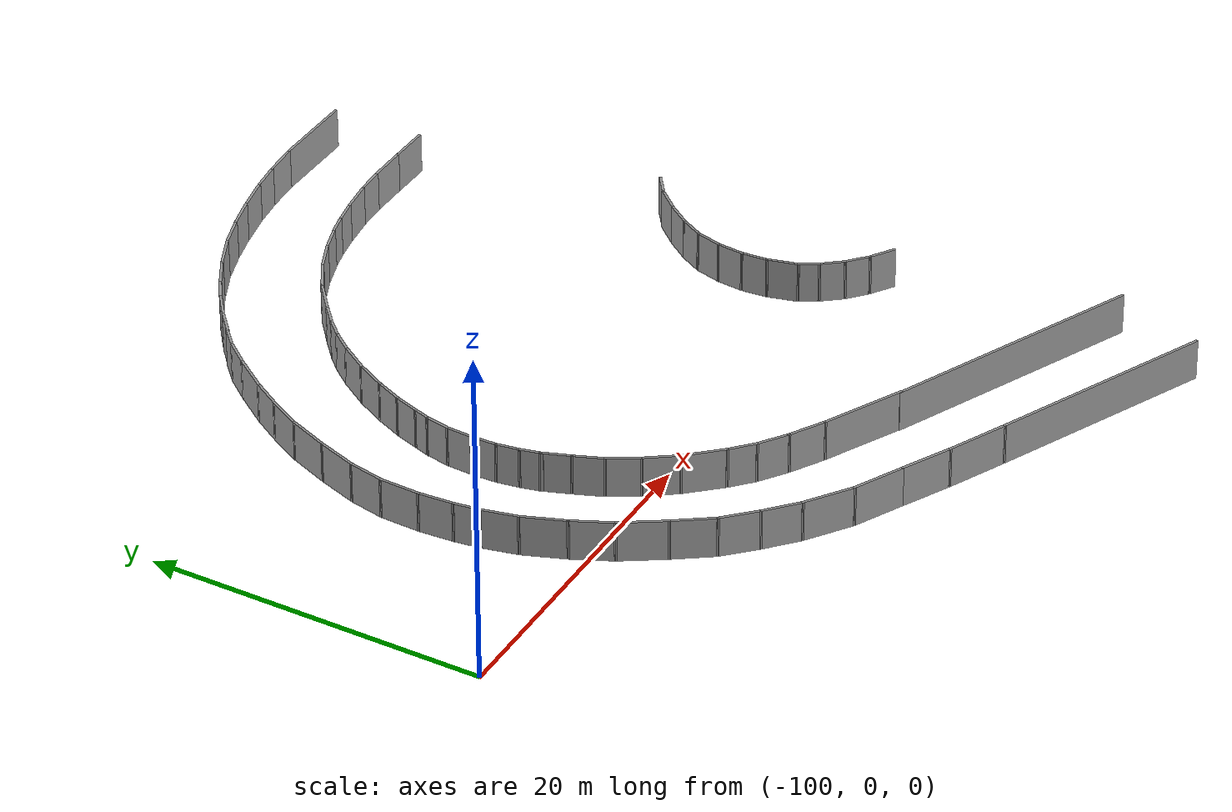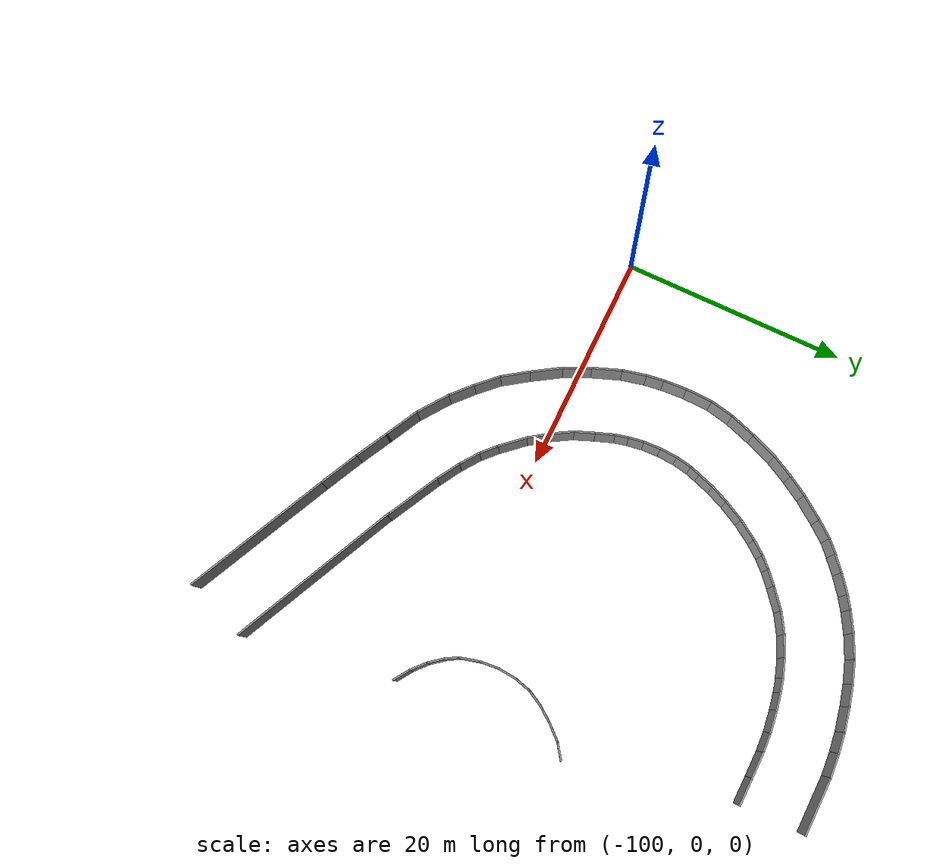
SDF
<sdf version="1.6">
 <model name="pista_l">
  <pose>-4.26084 -21.2973 0 0 -0 0</pose>
  <link name="Wall_280">
   <collision name="Wall_280_Collision">
    <geometry><box><size>1.56006 0.15 2.5</size></box></geometry>
    <pose>0 0 1.25 0 -0 0</pose>
   </collision>
   <visual name="Wall_280_Visual">
    <pose>0 0 1.25 0 -0 0</pose>
    <geometry><box><size>1.56006 0.15 2.5</size></box></geometry>
    <material>
     <script><uri>file://media/materials/scripts/gazebo.material</uri><name>Gazebo/Grey</name></script>
     <ambient>1 1 1 1</ambient>
    </material>
    <meta><layer>0</layer></meta>
   </visual>
   <pose>-54.7034 33.4497 0 0 0 -2.51696</pose>
  </link>
  <link name="Wall_281">
   <collision name="Wall_281_Collision">
    <geometry><box><size>1.82666 0.15 2.5</size></box></geometry>
    <pose>0 0 1.25 0 -0 0</pose>
   </collision>
   <visual name="Wall_281_Visual">
    <pose>0 0 1.25 0 -0 0</pose>
    <geometry><box><size>1.82666 0.15 2.5</size></box></geometry>
    <material>
     <script><uri>file://media/materials/scripts/gazebo.material</uri><name>Gazebo/Grey</name></script>
     <ambient>1 1 1 1</ambient>
    </material>
    <meta><layer>0</layer></meta>
   </visual>
   <pose>-55.8339 32.4122 0 0 0 -2.30007</pose>
  </link>
  <link name="Wall_282">
   <collision name="Wall_282_Collision">
    <geometry><box><size>1.69304 0.15 2.5</size></box></geometry>
    <pose>0 0 1.25 0 -0 0</pose>
   </collision>
   <visual name="Wall_282_Visual">
    <pose>0 0 1.25 0 -0 0</pose>
    <geometry><box><size>1.69304 0.15 2.5</size></box></geometry>
    <material>
     <script><uri>file://media/materials/scripts/gazebo.material</uri><name>Gazebo/Grey</name></script>
     <ambient>1 1 1 1</ambient>
    </material>
    <meta><layer>0</layer></meta>
   </visual>
   <pose>-56.8447 31.162 0 0 0 -2.19706</pose>
  </link>
  <link name="Wall_283">
   <collision name="Wall_283_Collision">
    <geometry><box><size>1.60209 0.15 2.5</size></box></geometry>
    <pose>0 0 1.25 0 -0 0</pose>
   </collision>
   <visual name="Wall_283_Visual">
    <pose>0 0 1.25 0 -0 0</pose>
    <geometry><box><size>1.60209 0.15 2.5</size></box></geometry>
    <material>
     <script><uri>file://media/materials/scripts/gazebo.material</uri><name>Gazebo/Grey</name></script>
     <ambient>1 1 1 1</ambient>
    </material>
    <meta><layer>0</layer></meta>
   </visual>
   <pose>-57.6427 29.8985 0 0 0 -2.06722</pose>
  </link>
  <link name="Wall_284">
   <collision name="Wall_284_Collision">
    <geometry><box><size>1.71783 0.15 2.5</size></box></geometry>
    <pose>0 0 1.25 0 -0 0</pose>
   </collision>
   <visual name="Wall_284_Visual">
    <pose>0 0 1.25 0 -0 0</pose>
    <geometry><box><size>1.71783 0.15 2.5</size></box></geometry>
    <material>
     <script><uri>file://media/materials/scripts/gazebo.material</uri><name>Gazebo/Grey</name></script>
     <ambient>1 1 1 1</ambient>
    </material>
    <meta><layer>0</layer></meta>
   </visual>
   <pose>-58.188 28.502 0 0 0 -1.82812</pose>
  </link>
  <link name="Wall_285">
   <collision name="Wall_285_Collision">
    <geometry><box><size>1.69853 0.15 2.5</size></box></geometry>
    <pose>0 0 1.25 0 -0 0</pose>
   </collision>
   <visual name="Wall_285_Visual">
    <pose>0 0 1.25 0 -0 0</pose>
    <geometry><box><size>1.69853 0.15 2.5</size></box></geometry>
    <material>
     <script><uri>file://media/materials/scripts/gazebo.material</uri><name>Gazebo/Grey</name></script>
     <ambient>1 1 1 1</ambient>
    </material>
    <meta><layer>0</layer></meta>
   </visual>
   <pose>-58.454 26.9725 0 0 0 -1.65679</pose>
  </link>
  <link name="Wall_286">
   <collision name="Wall_286_Collision">
    <geometry><box><size>1.67203 0.15 2.5</size></box></geometry>
    <pose>0 0 1.25 0 -0 0</pose>
   </collision>
   <visual name="Wall_286_Visual">
    <pose>0 0 1.25 0 -0 0</pose>
    <geometry><box><size>1.67203 0.15 2.5</size></box></geometry>
    <material>
     <script><uri>file://media/materials/scripts/gazebo.material</uri><name>Gazebo/Grey</name></script>
     <ambient>1 1 1 1</ambient>
    </material>
    <meta><layer>0</layer></meta>
   </visual>
   <pose>-58.454 25.443 0 0 0 -1.4833</pose>
  </link>
  <link name="Wall_287">
   <collision name="Wall_287_Collision">
    <geometry><box><size>1.93717 0.15 2.5</size></box></geometry>
    <pose>0 0 1.25 0 -0 0</pose>
   </collision>
   <visual name="Wall_287_Visual">
    <pose>0 0 1.25 0 -0 0</pose>
    <geometry><box><size>1.93717 0.15 2.5</size></box></geometry>
    <material>
     <script><uri>file://media/materials/scripts/gazebo.material</uri><name>Gazebo/Grey</name></script>
     <ambient>1 1 1 1</ambient>
    </material>
    <meta><layer>0</layer></meta>
   </visual>
   <pose>-58.1614 23.8204 0 0 0 -1.31499</pose>
  </link>
  <link name="Wall_288">
   <collision name="Wall_288_Collision">
    <geometry><box><size>1.31799 0.15 2.5</size></box></geometry>
    <pose>0 0 1.25 0 -0 0</pose>
   </collision>
   <visual name="Wall_288_Visual">
    <pose>0 0 1.25 0 -0 0</pose>
    <geometry><box><size>1.31799 0.15 2.5</size></box></geometry>
    <material>
     <script><uri>file://media/materials/scripts/gazebo.material</uri><name>Gazebo/Grey</name></script>
     <ambient>1 1 1 1</ambient>
    </material>
    <meta><layer>0</layer></meta>
   </visual>
   <pose>-57.6427 22.4505 0 0 0 -1.046</pose>
  </link>
  <link name="Wall_289">
   <collision name="Wall_289_Collision">
    <geometry><box><size>1.60817 0.15 2.5</size></box></geometry>
    <pose>0 0 1.25 0 -0 0</pose>
   </collision>
   <visual name="Wall_289_Visual">
    <pose>0 0 1.25 0 -0 0</pose>
    <geometry><box><size>1.60817 0.15 2.5</size></box></geometry>
    <material>
     <script><uri>file://media/materials/scripts/gazebo.material</uri><name>Gazebo/Grey</name></script>
     <ambient>1 1 1 1</ambient>
    </material>
    <meta><layer>0</layer></meta>
   </visual>
   <pose>-56.8979 21.3732 0 0 0 -0.901753</pose>
  </link>
  <link name="Wall_290">
   <collision name="Wall_290_Collision">
    <geometry><box><size>1.61904 0.15 2.5</size></box></geometry>
    <pose>0 0 1.25 0 -0 0</pose>
   </collision>
   <visual name="Wall_290_Visual">
    <pose>0 0 1.25 0 -0 0</pose>
    <geometry><box><size>1.61904 0.15 2.5</size></box></geometry>
    <material>
     <script><uri>file://media/materials/scripts/gazebo.material</uri><name>Gazebo/Grey</name></script>
     <ambient>1 1 1 1</ambient>
    </material>
    <meta><layer>0</layer></meta>
   </visual>
   <pose>-55.9004 20.3092 0 0 0 -0.734161</pose>
  </link>
  <link name="Wall_291">
   <collision name="Wall_291_Collision">
    <geometry><box><size>1.68453 0.15 2.5</size></box></geometry>
    <pose>0 0 1.25 0 -0 0</pose>
   </collision>
   <visual name="Wall_291_Visual">
    <pose>0 0 1.25 0 -0 0</pose>
    <geometry><box><size>1.68453 0.15 2.5</size></box></geometry>
    <material>
     <script><uri>file://media/materials/scripts/gazebo.material</uri><name>Gazebo/Grey</name></script>
     <ambient>1 1 1 1</ambient>
    </material>
    <meta><layer>0</layer></meta>
   </visual>
   <pose>-54.7167 19.3914 0 0 0 -0.588003</pose>
  </link>
  <link name="Wall_333">
   <collision name="Wall_333_Collision">
    <geometry><box><size>15.6946 0.15 2.5</size></box></geometry>
    <pose>0 0 1.25 0 -0 0</pose>
   </collision>
   <visual name="Wall_333_Visual">
    <pose>0 0 1.25 0 -0 0</pose>
    <geometry><box><size>15.6946 0.15 2.5</size></box></geometry>
    <material>
     <script><uri>file://media/materials/scripts/gazebo.material</uri><name>Gazebo/Grey</name></script>
     <ambient>1 1 1 1</ambient>
    </material>
    <meta><layer>0</layer></meta>
   </visual>
   <pose>-58.9594 9.15037 0 0 -0 2.71086</pose>
  </link>
  <link name="Wall_351">
   <collision name="Wall_351_Collision">
    <geometry><box><size>13.5265 0.15 2.5</size></box></geometry>
    <pose>0 0 1.25 0 -0 0</pose>
   </collision>
   <visual name="Wall_351_Visual">
    <pose>0 0 1.25 0 -0 0</pose>
    <geometry><box><size>13.5265 0.15 2.5</size></box></geometry>
    <material>
     <script><uri>file://media/materials/scripts/gazebo.material</uri><name>Gazebo/Grey</name></script>
     <ambient>1 1 1 1</ambient>
    </material>
    <meta><layer>0</layer></meta>
   </visual>
   <pose>-59.9303 3.29833 0 0 -0 2.70641</pose>
  </link>
  <link name="Wall_363">
   <collision name="Wall_363_Collision">
    <geometry><box><size>3.83823 0.15 2.5</size></box></geometry>
    <pose>0 0 1.25 0 -0 0</pose>
   </collision>
   <visual name="Wall_363_Visual">
    <pose>0 0 1.25 0 -0 0</pose>
    <geometry><box><size>3.83823 0.15 2.5</size></box></geometry>
    <material>
     <script><uri>file://media/materials/scripts/gazebo.material</uri><name>Gazebo/Grey</name></script>
     <ambient>1 1 1 1</ambient>
    </material>
    <meta><layer>0</layer></meta>
   </visual>
   <pose>-67.6577 6.91595 0 0 -0 2.69407</pose>
  </link>
  <link name="Wall_364">
   <collision name="Wall_364_Collision">
    <geometry><box><size>3.20763 0.15 2.5</size></box></geometry>
    <pose>0 0 1.25 0 -0 0</pose>
   </collision>
   <visual name="Wall_364_Visual">
    <pose>0 0 1.25 0 -0 0</pose>
    <geometry><box><size>3.20763 0.15 2.5</size></box></geometry>
    <material>
     <script><uri>file://media/materials/scripts/gazebo.material</uri><name>Gazebo/Grey</name></script>
     <ambient>1 1 1 1</ambient>
    </material>
    <meta><layer>0</layer></meta>
   </visual>
   <pose>-70.6768 8.41886 0 0 -0 2.66238</pose>
  </link>
  <link name="Wall_365">
   <collision name="Wall_365_Collision">
    <geometry><box><size>3.31442 0.15 2.5</size></box></geometry>
    <pose>0 0 1.25 0 -0 0</pose>
   </collision>
   <visual name="Wall_365_Visual">
    <pose>0 0 1.25 0 -0 0</pose>
    <geometry><box><size>3.31442 0.15 2.5</size></box></geometry>
    <material>
     <script><uri>file://media/materials/scripts/gazebo.material</uri><name>Gazebo/Grey</name></script>
     <ambient>1 1 1 1</ambient>
    </material>
    <meta><layer>0</layer></meta>
   </visual>
   <pose>-73.4432 9.84197 0 0 -0 2.67043</pose>
  </link>
  <link name="Wall_366">
   <collision name="Wall_366_Collision">
    <geometry><box><size>3.22057 0.15 2.5</size></box></geometry>
    <pose>0 0 1.25 0 -0 0</pose>
   </collision>
   <visual name="Wall_366_Visual">
    <pose>0 0 1.25 0 -0 0</pose>
    <geometry><box><size>3.22057 0.15 2.5</size></box></geometry>
    <material>
     <script><uri>file://media/materials/scripts/gazebo.material</uri><name>Gazebo/Grey</name></script>
     <ambient>1 1 1 1</ambient>
    </material>
    <meta><layer>0</layer></meta>
   </visual>
   <pose>-76.1033 11.4513 0 0 -0 2.52235</pose>
  </link>
  <link name="Wall_367">
   <collision name="Wall_367_Collision">
    <geometry><box><size>2.48507 0.15 2.5</size></box></geometry>
    <pose>0 0 1.25 0 -0 0</pose>
   </collision>
   <visual name="Wall_367_Visual">
    <pose>0 0 1.25 0 -0 0</pose>
    <geometry><box><size>2.48507 0.15 2.5</size></box></geometry>
    <material>
     <script><uri>file://media/materials/scripts/gazebo.material</uri><name>Gazebo/Grey</name></script>
     <ambient>1 1 1 1</ambient>
    </material>
    <meta><layer>0</layer></meta>
   </visual>
   <pose>-78.218 13.1271 0 0 -0 2.40454</pose>
  </link>
  <link name="Wall_368">
   <collision name="Wall_368_Collision">
    <geometry><box><size>2.50122 0.15 2.5</size></box></geometry>
    <pose>0 0 1.25 0 -0 0</pose>
   </collision>
   <visual name="Wall_368_Visual">
    <pose>0 0 1.25 0 -0 0</pose>
    <geometry><box><size>2.50122 0.15 2.5</size></box></geometry>
    <material>
     <script><uri>file://media/materials/scripts/gazebo.material</uri><name>Gazebo/Grey</name></script>
     <ambient>1 1 1 1</ambient>
    </material>
    <meta><layer>0</layer></meta>
   </visual>
   <pose>-79.9071 14.7497 0 0 -0 2.3482</pose>
  </link>
  <link name="Wall_369">
   <collision name="Wall_369_Collision">
    <geometry><box><size>2.71054 0.15 2.5</size></box></geometry>
    <pose>0 0 1.25 0 -0 0</pose>
   </collision>
   <visual name="Wall_369_Visual">
    <pose>0 0 1.25 0 -0 0</pose>
    <geometry><box><size>2.71054 0.15 2.5</size></box></geometry>
    <material>
     <script><uri>file://media/materials/scripts/gazebo.material</uri><name>Gazebo/Grey</name></script>
     <ambient>1 1 1 1</ambient>
    </material>
    <meta><layer>0</layer></meta>
   </visual>
   <pose>-81.4632 16.6383 0 0 -0 2.17897</pose>
  </link>
  <link name="Wall_370">
   <collision name="Wall_370_Collision">
    <geometry><box><size>2.98376 0.15 2.5</size></box></geometry>
    <pose>0 0 1.25 0 -0 0</pose>
   </collision>
   <visual name="Wall_370_Visual">
    <pose>0 0 1.25 0 -0 0</pose>
    <geometry><box><size>2.98376 0.15 2.5</size></box></geometry>
    <material>
     <script><uri>file://media/materials/scripts/gazebo.material</uri><name>Gazebo/Grey</name></script>
     <ambient>1 1 1 1</ambient>
    </material>
    <meta><layer>0</layer></meta>
   </visual>
   <pose>-82.9528 18.886 0 0 -0 2.13537</pose>
  </link>
  <link name="Wall_371">
   <collision name="Wall_371_Collision">
    <geometry><box><size>2.64886 0.15 2.5</size></box></geometry>
    <pose>0 0 1.25 0 -0 0</pose>
   </collision>
   <visual name="Wall_371_Visual">
    <pose>0 0 1.25 0 -0 0</pose>
    <geometry><box><size>2.64886 0.15 2.5</size></box></geometry>
    <material>
     <script><uri>file://media/materials/scripts/gazebo.material</uri><name>Gazebo/Grey</name></script>
     <ambient>1 1 1 1</ambient>
    </material>
    <meta><layer>0</layer></meta>
   </visual>
   <pose>-84.2429 21.2136 0 0 -0 2.01064</pose>
  </link>
  <link name="Wall_372">
   <collision name="Wall_372_Collision">
    <geometry><box><size>2.76833 0.15 2.5</size></box></geometry>
    <pose>0 0 1.25 0 -0 0</pose>
   </collision>
   <visual name="Wall_372_Visual">
    <pose>0 0 1.25 0 -0 0</pose>
    <geometry><box><size>2.76833 0.15 2.5</size></box></geometry>
    <material>
     <script><uri>file://media/materials/scripts/gazebo.material</uri><name>Gazebo/Grey</name></script>
     <ambient>1 1 1 1</ambient>
    </material>
    <meta><layer>0</layer></meta>
   </visual>
   <pose>-85.2404 23.5677 0 0 -0 1.93432</pose>
  </link>
  <link name="Wall_373">
   <collision name="Wall_373_Collision">
    <geometry><box><size>2.27935 0.15 2.5</size></box></geometry>
    <pose>0 0 1.25 0 -0 0</pose>
   </collision>
   <visual name="Wall_373_Visual">
    <pose>0 0 1.25 0 -0 0</pose>
    <geometry><box><size>2.27935 0.15 2.5</size></box></geometry>
    <material>
     <script><uri>file://media/materials/scripts/gazebo.material</uri><name>Gazebo/Grey</name></script>
     <ambient>1 1 1 1</ambient>
    </material>
    <meta><layer>0</layer></meta>
   </visual>
   <pose>-85.9453 25.8287 0 0 -0 1.7976</pose>
  </link>
  <link name="Wall_375">
   <collision name="Wall_375_Collision">
    <geometry><box><size>5.17033 0.15 2.5</size></box></geometry>
    <pose>0 0 1.25 0 -0 0</pose>
   </collision>
   <visual name="Wall_375_Visual">
    <pose>0 0 1.25 0 -0 0</pose>
    <geometry><box><size>5.17033 0.15 2.5</size></box></geometry>
    <material>
     <script><uri>file://media/materials/scripts/gazebo.material</uri><name>Gazebo/Grey</name></script>
     <ambient>1 1 1 1</ambient>
    </material>
    <meta><layer>0</layer></meta>
   </visual>
   <pose>-68.1764 13.5394 0 0 -0 2.66847</pose>
  </link>
  <link name="Wall_376">
   <collision name="Wall_376_Collision">
    <geometry><box><size>2.40365 0.15 2.5</size></box></geometry>
    <pose>0 0 1.25 0 -0 0</pose>
   </collision>
   <visual name="Wall_376_Visual">
    <pose>0 0 1.25 0 -0 0</pose>
    <geometry><box><size>2.40365 0.15 2.5</size></box></geometry>
    <material>
     <script><uri>file://media/materials/scripts/gazebo.material</uri><name>Gazebo/Grey</name></script>
     <ambient>1 1 1 1</ambient>
    </material>
    <meta><layer>0</layer></meta>
   </visual>
   <pose>-71.3817 15.2551 0 0 -0 2.60927</pose>
  </link>
  <link name="Wall_377">
   <collision name="Wall_377_Collision">
    <geometry><box><size>2.07645 0.15 2.5</size></box></geometry>
    <pose>0 0 1.25 0 -0 0</pose>
   </collision>
   <visual name="Wall_377_Visual">
    <pose>0 0 1.25 0 -0 0</pose>
    <geometry><box><size>2.07645 0.15 2.5</size></box></geometry>
    <material>
     <script><uri>file://media/materials/scripts/gazebo.material</uri><name>Gazebo/Grey</name></script>
     <ambient>1 1 1 1</ambient>
    </material>
    <meta><layer>0</layer></meta>
   </visual>
   <pose>-73.1373 16.3856 0 0 -0 2.52295</pose>
  </link>
  <link name="Wall_378">
   <collision name="Wall_378_Collision">
    <geometry><box><size>1.82497 0.15 2.5</size></box></geometry>
    <pose>0 0 1.25 0 -0 0</pose>
   </collision>
   <visual name="Wall_378_Visual">
    <pose>0 0 1.25 0 -0 0</pose>
    <geometry><box><size>1.82497 0.15 2.5</size></box></geometry>
    <material>
     <script><uri>file://media/materials/scripts/gazebo.material</uri><name>Gazebo/Grey</name></script>
     <ambient>1 1 1 1</ambient>
    </material>
    <meta><layer>0</layer></meta>
   </visual>
   <pose>-74.5338 17.5161 0 0 -0 2.38989</pose>
  </link>
  <link name="Wall_379">
   <collision name="Wall_379_Collision">
    <geometry><box><size>2.69265 0.15 2.5</size></box></geometry>
    <pose>0 0 1.25 0 -0 0</pose>
   </collision>
   <visual name="Wall_379_Visual">
    <pose>0 0 1.25 0 -0 0</pose>
    <geometry><box><size>2.69265 0.15 2.5</size></box></geometry>
    <material>
     <script><uri>file://media/materials/scripts/gazebo.material</uri><name>Gazebo/Grey</name></script>
     <ambient>1 1 1 1</ambient>
    </material>
    <meta><layer>0</layer></meta>
   </visual>
   <pose>-75.9969 19.0323 0 0 -0 2.30439</pose>
  </link>
  <link name="Wall_380">
   <collision name="Wall_380_Collision">
    <geometry><box><size>2.23111 0.15 2.5</size></box></geometry>
    <pose>0 0 1.25 0 -0 0</pose>
   </collision>
   <visual name="Wall_380_Visual">
    <pose>0 0 1.25 0 -0 0</pose>
    <geometry><box><size>2.23111 0.15 2.5</size></box></geometry>
    <material>
     <script><uri>file://media/materials/scripts/gazebo.material</uri><name>Gazebo/Grey</name></script>
     <ambient>1 1 1 1</ambient>
    </material>
    <meta><layer>0</layer></meta>
   </visual>
   <pose>-77.4466 20.8279 0 0 -0 2.18362</pose>
  </link>
  <link name="Wall_381">
   <collision name="Wall_381_Collision">
    <geometry><box><size>2.09345 0.15 2.5</size></box></geometry>
    <pose>0 0 1.25 0 -0 0</pose>
   </collision>
   <visual name="Wall_381_Visual">
    <pose>0 0 1.25 0 -0 0</pose>
    <geometry><box><size>2.09345 0.15 2.5</size></box></geometry>
    <material>
     <script><uri>file://media/materials/scripts/gazebo.material</uri><name>Gazebo/Grey</name></script>
     <ambient>1 1 1 1</ambient>
    </material>
    <meta><layer>0</layer></meta>
   </visual>
   <pose>-78.5372 22.517 0 0 -0 2.10183</pose>
  </link>
  <link name="Wall_382">
   <collision name="Wall_382_Collision">
    <geometry><box><size>1.95294 0.15 2.5</size></box></geometry>
    <pose>0 0 1.25 0 -0 0</pose>
   </collision>
   <visual name="Wall_382_Visual">
    <pose>0 0 1.25 0 -0 0</pose>
    <geometry><box><size>1.95294 0.15 2.5</size></box></geometry>
    <material>
     <script><uri>file://media/materials/scripts/gazebo.material</uri><name>Gazebo/Grey</name></script>
     <ambient>1 1 1 1</ambient>
    </material>
    <meta><layer>0</layer></meta>
   </visual>
   <pose>-79.3618 24.1928 0 0 -0 1.94856</pose>
  </link>
  <link name="Wall_383">
   <collision name="Wall_383_Collision">
    <geometry><box><size>1.84992 0.15 2.5</size></box></geometry>
    <pose>0 0 1.25 0 -0 0</pose>
   </collision>
   <visual name="Wall_383_Visual">
    <pose>0 0 1.25 0 -0 0</pose>
    <geometry><box><size>1.84992 0.15 2.5</size></box></geometry>
    <material>
     <script><uri>file://media/materials/scripts/gazebo.material</uri><name>Gazebo/Grey</name></script>
     <ambient>1 1 1 1</ambient>
    </material>
    <meta><layer>0</layer></meta>
   </visual>
   <pose>-79.9869 25.8287 0 0 -0 1.92224</pose>
  </link>
  <link name="Wall_385">
   <collision name="Wall_385_Collision">
    <geometry><box><size>1.68107 0.15 2.5</size></box></geometry>
    <pose>0 0 1.25 0 -0 0</pose>
   </collision>
   <visual name="Wall_385_Visual">
    <pose>0 0 1.25 0 -0 0</pose>
    <geometry><box><size>1.68107 0.15 2.5</size></box></geometry>
    <material>
     <script><uri>file://media/materials/scripts/gazebo.material</uri><name>Gazebo/Grey</name></script>
     <ambient>1 1 1 1</ambient>
    </material>
    <meta><layer>0</layer></meta>
   </visual>
   <pose>-86.2911 27.6242 0 0 -0 1.71024</pose>
  </link>
  <link name="Wall_386">
   <collision name="Wall_386_Collision">
    <geometry><box><size>2.22907 0.15 2.5</size></box></geometry>
    <pose>0 0 1.25 0 -0 0</pose>
   </collision>
   <visual name="Wall_386_Visual">
    <pose>0 0 1.25 0 -0 0</pose>
    <geometry><box><size>2.22907 0.15 2.5</size></box></geometry>
    <material>
     <script><uri>file://media/materials/scripts/gazebo.material</uri><name>Gazebo/Grey</name></script>
     <ambient>1 1 1 1</ambient>
    </material>
    <meta><layer>0</layer></meta>
   </visual>
   <pose>-86.464 29.4197 0 0 -0 1.63481</pose>
  </link>
  <link name="Wall_387">
   <collision name="Wall_387_Collision">
    <geometry><box><size>2.51876 0.15 2.5</size></box></geometry>
    <pose>0 0 1.25 0 -0 0</pose>
   </collision>
   <visual name="Wall_387_Visual">
    <pose>0 0 1.25 0 -0 0</pose>
    <geometry><box><size>2.51876 0.15 2.5</size></box></geometry>
    <material>
     <script><uri>file://media/materials/scripts/gazebo.material</uri><name>Gazebo/Grey</name></script>
     <ambient>1 1 1 1</ambient>
    </material>
    <meta><layer>0</layer></meta>
   </visual>
   <pose>-86.4906 31.6408 0 0 -0 1.5371</pose>
  </link>
  <link name="Wall_388">
   <collision name="Wall_388_Collision">
    <geometry><box><size>2.26802 0.15 2.5</size></box></geometry>
    <pose>0 0 1.25 0 -0 0</pose>
   </collision>
   <visual name="Wall_388_Visual">
    <pose>0 0 1.25 0 -0 0</pose>
    <geometry><box><size>2.26802 0.15 2.5</size></box></geometry>
    <material>
     <script><uri>file://media/materials/scripts/gazebo.material</uri><name>Gazebo/Grey</name></script>
     <ambient>1 1 1 1</ambient>
    </material>
    <meta><layer>0</layer></meta>
   </visual>
   <pose>-86.2379 33.862 0 0 -0 1.36848</pose>
  </link>
  <link name="Wall_389">
   <collision name="Wall_389_Collision">
    <geometry><box><size>2.56418 0.15 2.5</size></box></geometry>
    <pose>0 0 1.25 0 -0 0</pose>
   </collision>
   <visual name="Wall_389_Visual">
    <pose>0 0 1.25 0 -0 0</pose>
    <geometry><box><size>2.56418 0.15 2.5</size></box></geometry>
    <material>
     <script><uri>file://media/materials/scripts/gazebo.material</uri><name>Gazebo/Grey</name></script>
     <ambient>1 1 1 1</ambient>
    </material>
    <meta><layer>0</layer></meta>
   </visual>
   <pose>-85.6394 36.0432 0 0 -0 1.24556</pose>
  </link>
  <link name="Wall_390">
   <collision name="Wall_390_Collision">
    <geometry><box><size>2.66917 0.15 2.5</size></box></geometry>
    <pose>0 0 1.25 0 -0 0</pose>
   </collision>
   <visual name="Wall_390_Visual">
    <pose>0 0 1.25 0 -0 0</pose>
    <geometry><box><size>2.66917 0.15 2.5</size></box></geometry>
    <material>
     <script><uri>file://media/materials/scripts/gazebo.material</uri><name>Gazebo/Grey</name></script>
     <ambient>1 1 1 1</ambient>
    </material>
    <meta><layer>0</layer></meta>
   </visual>
   <pose>-84.7882 38.3574 0 0 -0 1.19225</pose>
  </link>
  <link name="Wall_391">
   <collision name="Wall_391_Collision">
    <geometry><box><size>2.2921 0.15 2.5</size></box></geometry>
    <pose>0 0 1.25 0 -0 0</pose>
   </collision>
   <visual name="Wall_391_Visual">
    <pose>0 0 1.25 0 -0 0</pose>
    <geometry><box><size>2.2921 0.15 2.5</size></box></geometry>
    <material>
     <script><uri>file://media/materials/scripts/gazebo.material</uri><name>Gazebo/Grey</name></script>
     <ambient>1 1 1 1</ambient>
    </material>
    <meta><layer>0</layer></meta>
   </visual>
   <pose>-83.8173 40.4721 0 0 -0 1.07938</pose>
  </link>
  <link name="Wall_392">
   <collision name="Wall_392_Collision">
    <geometry><box><size>2.08433 0.15 2.5</size></box></geometry>
    <pose>0 0 1.25 0 -0 0</pose>
   </collision>
   <visual name="Wall_392_Visual">
    <pose>0 0 1.25 0 -0 0</pose>
    <geometry><box><size>2.08433 0.15 2.5</size></box></geometry>
    <material>
     <script><uri>file://media/materials/scripts/gazebo.material</uri><name>Gazebo/Grey</name></script>
     <ambient>1 1 1 1</ambient>
    </material>
    <meta><layer>0</layer></meta>
   </visual>
   <pose>-82.8065 42.241 0 0 -0 1.02094</pose>
  </link>
  <link name="Wall_393">
   <collision name="Wall_393_Collision">
    <geometry><box><size>2.51248 0.15 2.5</size></box></geometry>
    <pose>0 0 1.25 0 -0 0</pose>
   </collision>
   <visual name="Wall_393_Visual">
    <pose>0 0 1.25 0 -0 0</pose>
    <geometry><box><size>2.51248 0.15 2.5</size></box></geometry>
    <material>
     <script><uri>file://media/materials/scripts/gazebo.material</uri><name>Gazebo/Grey</name></script>
     <ambient>1 1 1 1</ambient>
    </material>
    <meta><layer>0</layer></meta>
   </visual>
   <pose>-81.6095 44.0232 0 0 -0 0.945311</pose>
  </link>
  <link name="Wall_394">
   <collision name="Wall_394_Collision">
    <geometry><box><size>1.89064 0.15 2.5</size></box></geometry>
    <pose>0 0 1.25 0 -0 0</pose>
   </collision>
   <visual name="Wall_394_Visual">
    <pose>0 0 1.25 0 -0 0</pose>
    <geometry><box><size>1.89064 0.15 2.5</size></box></geometry>
    <material>
     <script><uri>file://media/materials/scripts/gazebo.material</uri><name>Gazebo/Grey</name></script>
     <ambient>1 1 1 1</ambient>
    </material>
    <meta><layer>0</layer></meta>
   </visual>
   <pose>-80.3726 45.6591 0 0 -0 0.893669</pose>
  </link>
  <link name="Wall_395">
   <collision name="Wall_395_Collision">
    <geometry><box><size>1.54239 0.15 2.5</size></box></geometry>
    <pose>0 0 1.25 0 -0 0</pose>
   </collision>
   <visual name="Wall_395_Visual">
    <pose>0 0 1.25 0 -0 0</pose>
    <geometry><box><size>1.54239 0.15 2.5</size></box></geometry>
    <material>
     <script><uri>file://media/materials/scripts/gazebo.material</uri><name>Gazebo/Grey</name></script>
     <ambient>1 1 1 1</ambient>
    </material>
    <meta><layer>0</layer></meta>
   </visual>
   <pose>-79.3219 46.8163 0 0 -0 0.758378</pose>
  </link>
  <link name="Wall_397">
   <collision name="Wall_397_Collision">
    <geometry><box><size>1.40811 0.15 2.5</size></box></geometry>
    <pose>0 0 1.25 0 -0 0</pose>
   </collision>
   <visual name="Wall_397_Visual">
    <pose>0 0 1.25 0 -0 0</pose>
    <geometry><box><size>1.40811 0.15 2.5</size></box></geometry>
    <material>
     <script><uri>file://media/materials/scripts/gazebo.material</uri><name>Gazebo/Grey</name></script>
     <ambient>1 1 1 1</ambient>
    </material>
    <meta><layer>0</layer></meta>
   </visual>
   <pose>-80.3992 27.1321 0 0 -0 1.80552</pose>
  </link>
  <link name="Wall_398">
   <collision name="Wall_398_Collision">
    <geometry><box><size>1.49693 0.15 2.5</size></box></geometry>
    <pose>0 0 1.25 0 -0 0</pose>
   </collision>
   <visual name="Wall_398_Visual">
    <pose>0 0 1.25 0 -0 0</pose>
    <geometry><box><size>1.49693 0.15 2.5</size></box></geometry>
    <material>
     <script><uri>file://media/materials/scripts/gazebo.material</uri><name>Gazebo/Grey</name></script>
     <ambient>1 1 1 1</ambient>
    </material>
    <meta><layer>0</layer></meta>
   </visual>
   <pose>-80.6519 28.4089 0 0 -0 1.72945</pose>
  </link>
  <link name="Wall_399">
   <collision name="Wall_399_Collision">
    <geometry><box><size>1.63985 0.15 2.5</size></box></geometry>
    <pose>0 0 1.25 0 -0 0</pose>
   </collision>
   <visual name="Wall_399_Visual">
    <pose>0 0 1.25 0 -0 0</pose>
    <geometry><box><size>1.63985 0.15 2.5</size></box></geometry>
    <material>
     <script><uri>file://media/materials/scripts/gazebo.material</uri><name>Gazebo/Grey</name></script>
     <ambient>1 1 1 1</ambient>
    </material>
    <meta><layer>0</layer></meta>
   </visual>
   <pose>-80.7849 29.8187 0 0 -0 1.6065</pose>
  </link>
  <link name="Wall_400">
   <collision name="Wall_400_Collision">
    <geometry><box><size>1.69487 0.15 2.5</size></box></geometry>
    <pose>0 0 1.25 0 -0 0</pose>
   </collision>
   <visual name="Wall_400_Visual">
    <pose>0 0 1.25 0 -0 0</pose>
    <geometry><box><size>1.69487 0.15 2.5</size></box></geometry>
    <material>
     <script><uri>file://media/materials/scripts/gazebo.material</uri><name>Gazebo/Grey</name></script>
     <ambient>1 1 1 1</ambient>
    </material>
    <meta><layer>0</layer></meta>
   </visual>
   <pose>-80.7716 31.3349 0 0 -0 1.51912</pose>
  </link>
  <link name="Wall_401">
   <collision name="Wall_401_Collision">
    <geometry><box><size>1.58469 0.15 2.5</size></box></geometry>
    <pose>0 0 1.25 0 -0 0</pose>
   </collision>
   <visual name="Wall_401_Visual">
    <pose>0 0 1.25 0 -0 0</pose>
    <geometry><box><size>1.58469 0.15 2.5</size></box></geometry>
    <material>
     <script><uri>file://media/materials/scripts/gazebo.material</uri><name>Gazebo/Grey</name></script>
     <ambient>1 1 1 1</ambient>
    </material>
    <meta><layer>0</layer></meta>
   </visual>
   <pose>-80.5987 32.8112 0 0 -0 1.38431</pose>
  </link>
  <link name="Wall_402">
   <collision name="Wall_402_Collision">
    <geometry><box><size>1.10056 0.15 2.5</size></box></geometry>
    <pose>0 0 1.25 0 -0 0</pose>
   </collision>
   <visual name="Wall_402_Visual">
    <pose>0 0 1.25 0 -0 0</pose>
    <geometry><box><size>1.10056 0.15 2.5</size></box></geometry>
    <material>
     <script><uri>file://media/materials/scripts/gazebo.material</uri><name>Gazebo/Grey</name></script>
     <ambient>1 1 1 1</ambient>
    </material>
    <meta><layer>0</layer></meta>
   </visual>
   <pose>-80.3194 33.9684 0 0 -0 1.25789</pose>
  </link>
  <link name="Wall_403">
   <collision name="Wall_403_Collision">
    <geometry><box><size>1.66411 0.15 2.5</size></box></geometry>
    <pose>0 0 1.25 0 -0 0</pose>
   </collision>
   <visual name="Wall_403_Visual">
    <pose>0 0 1.25 0 -0 0</pose>
    <geometry><box><size>1.66411 0.15 2.5</size></box></geometry>
    <material>
     <script><uri>file://media/materials/scripts/gazebo.material</uri><name>Gazebo/Grey</name></script>
     <ambient>1 1 1 1</ambient>
    </material>
    <meta><layer>0</layer></meta>
   </visual>
   <pose>-79.9337 35.1388 0 0 -0 1.24905</pose>
  </link>
  <link name="Wall_404">
   <collision name="Wall_404_Collision">
    <geometry><box><size>1.80564 0.15 2.5</size></box></geometry>
    <pose>0 0 1.25 0 -0 0</pose>
   </collision>
   <visual name="Wall_404_Visual">
    <pose>0 0 1.25 0 -0 0</pose>
    <geometry><box><size>1.80564 0.15 2.5</size></box></geometry>
    <material>
     <script><uri>file://media/materials/scripts/gazebo.material</uri><name>Gazebo/Grey</name></script>
     <ambient>1 1 1 1</ambient>
    </material>
    <meta><layer>0</layer></meta>
   </visual>
   <pose>-79.3618 36.6151 0 0 -0 1.15747</pose>
  </link>
  <link name="Wall_405">
   <collision name="Wall_405_Collision">
    <geometry><box><size>2.10127 0.15 2.5</size></box></geometry>
    <pose>0 0 1.25 0 -0 0</pose>
   </collision>
   <visual name="Wall_405_Visual">
    <pose>0 0 1.25 0 -0 0</pose>
    <geometry><box><size>2.10127 0.15 2.5</size></box></geometry>
    <material>
     <script><uri>file://media/materials/scripts/gazebo.material</uri><name>Gazebo/Grey</name></script>
     <ambient>1 1 1 1</ambient>
    </material>
    <meta><layer>0</layer></meta>
   </visual>
   <pose>-78.5771 38.2377 0 0 -0 1.08886</pose>
  </link>
  <link name="Wall_406">
   <collision name="Wall_406_Collision">
    <geometry><box><size>2.1272 0.15 2.5</size></box></geometry>
    <pose>0 0 1.25 0 -0 0</pose>
   </collision>
   <visual name="Wall_406_Visual">
    <pose>0 0 1.25 0 -0 0</pose>
    <geometry><box><size>2.1272 0.15 2.5</size></box></geometry>
    <material>
     <script><uri>file://media/materials/scripts/gazebo.material</uri><name>Gazebo/Grey</name></script>
     <ambient>1 1 1 1</ambient>
    </material>
    <meta><layer>0</layer></meta>
   </visual>
   <pose>-77.5796 39.9268 0 0 -0 0.986525</pose>
  </link>
  <link name="Wall_407">
   <collision name="Wall_407_Collision">
    <geometry><box><size>1.57081 0.15 2.5</size></box></geometry>
    <pose>0 0 1.25 0 -0 0</pose>
   </collision>
   <visual name="Wall_407_Visual">
    <pose>0 0 1.25 0 -0 0</pose>
    <geometry><box><size>1.57081 0.15 2.5</size></box></geometry>
    <material>
     <script><uri>file://media/materials/scripts/gazebo.material</uri><name>Gazebo/Grey</name></script>
     <ambient>1 1 1 1</ambient>
    </material>
    <meta><layer>0</layer></meta>
   </visual>
   <pose>-76.5954 41.31 0 0 -0 0.904827</pose>
  </link>
  <link name="Wall_408">
   <collision name="Wall_408_Collision">
    <geometry><box><size>1.37274 0.15 2.5</size></box></geometry>
    <pose>0 0 1.25 0 -0 0</pose>
   </collision>
   <visual name="Wall_408_Visual">
    <pose>0 0 1.25 0 -0 0</pose>
    <geometry><box><size>1.37274 0.15 2.5</size></box></geometry>
    <material>
     <script><uri>file://media/materials/scripts/gazebo.material</uri><name>Gazebo/Grey</name></script>
     <ambient>1 1 1 1</ambient>
    </material>
    <meta><layer>0</layer></meta>
   </visual>
   <pose>-75.7309 42.3075 0 0 -0 0.800782</pose>
  </link>
  <link name="Wall_409">
   <collision name="Wall_409_Collision">
    <geometry><box><size>1.60136 0.15 2.5</size></box></geometry>
    <pose>0 0 1.25 0 -0 0</pose>
   </collision>
   <visual name="Wall_409_Visual">
    <pose>0 0 1.25 0 -0 0</pose>
    <geometry><box><size>1.60136 0.15 2.5</size></box></geometry>
    <material>
     <script><uri>file://media/materials/scripts/gazebo.material</uri><name>Gazebo/Grey</name></script>
     <ambient>1 1 1 1</ambient>
    </material>
    <meta><layer>0</layer></meta>
   </visual>
   <pose>-74.7599 43.2252 0 0 -0 0.720554</pose>
  </link>
  <link name="Wall_410">
   <collision name="Wall_410_Collision">
    <geometry><box><size>2.24805 0.15 2.5</size></box></geometry>
    <pose>0 0 1.25 0 -0 0</pose>
   </collision>
   <visual name="Wall_410_Visual">
    <pose>0 0 1.25 0 -0 0</pose>
    <geometry><box><size>2.24805 0.15 2.5</size></box></geometry>
    <material>
     <script><uri>file://media/materials/scripts/gazebo.material</uri><name>Gazebo/Grey</name></script>
     <ambient>1 1 1 1</ambient>
    </material>
    <meta><layer>0</layer></meta>
   </visual>
   <pose>-73.4033 44.369 0 0 -0 0.686622</pose>
  </link>
  <link name="Wall_411">
   <collision name="Wall_411_Collision">
    <geometry><box><size>2.07056 0.15 2.5</size></box></geometry>
    <pose>0 0 1.25 0 -0 0</pose>
   </collision>
   <visual name="Wall_411_Visual">
    <pose>0 0 1.25 0 -0 0</pose>
    <geometry><box><size>2.07056 0.15 2.5</size></box></geometry>
    <material>
     <script><uri>file://media/materials/scripts/gazebo.material</uri><name>Gazebo/Grey</name></script>
     <ambient>1 1 1 1</ambient>
    </material>
    <meta><layer>0</layer></meta>
   </visual>
   <pose>-71.7674 45.5261 0 0 -0 0.538044</pose>
  </link>
  <link name="Wall_412">
   <collision name="Wall_412_Collision">
    <geometry><box><size>2.00821 0.15 2.5</size></box></geometry>
    <pose>0 0 1.25 0 -0 0</pose>
   </collision>
   <visual name="Wall_412_Visual">
    <pose>0 0 1.25 0 -0 0</pose>
    <geometry><box><size>2.00821 0.15 2.5</size></box></geometry>
    <material>
     <script><uri>file://media/materials/scripts/gazebo.material</uri><name>Gazebo/Grey</name></script>
     <ambient>1 1 1 1</ambient>
    </material>
    <meta><layer>0</layer></meta>
   </visual>
   <pose>-70.0916 46.3906 0 0 -0 0.41241</pose>
  </link>
  <link name="Wall_413">
   <collision name="Wall_413_Collision">
    <geometry><box><size>1.71467 0.15 2.5</size></box></geometry>
    <pose>0 0 1.25 0 -0 0</pose>
   </collision>
   <visual name="Wall_413_Visual">
    <pose>0 0 1.25 0 -0 0</pose>
    <geometry><box><size>1.71467 0.15 2.5</size></box></geometry>
    <material>
     <script><uri>file://media/materials/scripts/gazebo.material</uri><name>Gazebo/Grey</name></script>
     <ambient>1 1 1 1</ambient>
    </material>
    <meta><layer>0</layer></meta>
   </visual>
   <pose>-68.4956 47.0025 0 0 -0 0.310998</pose>
  </link>
  <link name="Wall_415">
   <collision name="Wall_415_Collision">
    <geometry><box><size>1.67644 0.15 2.5</size></box></geometry>
    <pose>0 0 1.25 0 -0 0</pose>
   </collision>
   <visual name="Wall_415_Visual">
    <pose>0 0 1.25 0 -0 0</pose>
    <geometry><box><size>1.67644 0.15 2.5</size></box></geometry>
    <material>
     <script><uri>file://media/materials/scripts/gazebo.material</uri><name>Gazebo/Grey</name></script>
     <ambient>1 1 1 1</ambient>
    </material>
    <meta><layer>0</layer></meta>
   </visual>
   <pose>-78.1914 47.8005 0 0 -0 0.723748</pose>
  </link>
  <link name="Wall_416">
   <collision name="Wall_416_Collision">
    <geometry><box><size>1.9908 0.15 2.5</size></box></geometry>
    <pose>0 0 1.25 0 -0 0</pose>
   </collision>
   <visual name="Wall_416_Visual">
    <pose>0 0 1.25 0 -0 0</pose>
    <geometry><box><size>1.9908 0.15 2.5</size></box></geometry>
    <material>
     <script><uri>file://media/materials/scripts/gazebo.material</uri><name>Gazebo/Grey</name></script>
     <ambient>1 1 1 1</ambient>
    </material>
    <meta><layer>0</layer></meta>
   </visual>
   <pose>-76.888 48.8645 0 0 -0 0.652171</pose>
  </link>
  <link name="Wall_417">
   <collision name="Wall_417_Collision">
    <geometry><box><size>1.41903 0.15 2.5</size></box></geometry>
    <pose>0 0 1.25 0 -0 0</pose>
   </collision>
   <visual name="Wall_417_Visual">
    <pose>0 0 1.25 0 -0 0</pose>
    <geometry><box><size>1.41903 0.15 2.5</size></box></geometry>
    <material>
     <script><uri>file://media/materials/scripts/gazebo.material</uri><name>Gazebo/Grey</name></script>
     <ambient>1 1 1 1</ambient>
    </material>
    <meta><layer>0</layer></meta>
   </visual>
   <pose>-75.6245 49.7689 0 0 -0 0.576375</pose>
  </link>
  <link name="Wall_418">
   <collision name="Wall_418_Collision">
    <geometry><box><size>2.04385 0.15 2.5</size></box></geometry>
    <pose>0 0 1.25 0 -0 0</pose>
   </collision>
   <visual name="Wall_418_Visual">
    <pose>0 0 1.25 0 -0 0</pose>
    <geometry><box><size>2.04385 0.15 2.5</size></box></geometry>
    <material>
     <script><uri>file://media/materials/scripts/gazebo.material</uri><name>Gazebo/Grey</name></script>
     <ambient>1 1 1 1</ambient>
    </material>
    <meta><layer>0</layer></meta>
   </visual>
   <pose>-74.2678 50.5802 0 0 -0 0.51392</pose>
  </link>
  <link name="Wall_419">
   <collision name="Wall_419_Collision">
    <geometry><box><size>2.2568 0.15 2.5</size></box></geometry>
    <pose>0 0 1.25 0 -0 0</pose>
   </collision>
   <visual name="Wall_419_Visual">
    <pose>0 0 1.25 0 -0 0</pose>
    <geometry><box><size>2.2568 0.15 2.5</size></box></geometry>
    <material>
     <script><uri>file://media/materials/scripts/gazebo.material</uri><name>Gazebo/Grey</name></script>
     <ambient>1 1 1 1</ambient>
    </material>
    <meta><layer>0</layer></meta>
   </visual>
   <pose>-72.4856 51.4846 0 0 -0 0.429762</pose>
  </link>
  <link name="Wall_420">
   <collision name="Wall_420_Collision">
    <geometry><box><size>2.13524 0.15 2.5</size></box></geometry>
    <pose>0 0 1.25 0 -0 0</pose>
   </collision>
   <visual name="Wall_420_Visual">
    <pose>0 0 1.25 0 -0 0</pose>
    <geometry><box><size>2.13524 0.15 2.5</size></box></geometry>
    <material>
     <script><uri>file://media/materials/scripts/gazebo.material</uri><name>Gazebo/Grey</name></script>
     <ambient>1 1 1 1</ambient>
    </material>
    <meta><layer>0</layer></meta>
   </visual>
   <pose>-70.5837 52.2294 0 0 -0 0.313276</pose>
  </link>
  <link name="Wall_421">
   <collision name="Wall_421_Collision">
    <geometry><box><size>1.98869 0.15 2.5</size></box></geometry>
    <pose>0 0 1.25 0 -0 0</pose>
   </collision>
   <visual name="Wall_421_Visual">
    <pose>0 0 1.25 0 -0 0</pose>
    <geometry><box><size>1.98869 0.15 2.5</size></box></geometry>
    <material>
     <script><uri>file://media/materials/scripts/gazebo.material</uri><name>Gazebo/Grey</name></script>
     <ambient>1 1 1 1</ambient>
    </material>
    <meta><layer>0</layer></meta>
   </visual>
   <pose>-68.7483 52.7614 0 0 -0 0.248487</pose>
  </link>
  <link name="Wall_422">
   <collision name="Wall_422_Collision">
    <geometry><box><size>2.23672 0.15 2.5</size></box></geometry>
    <pose>0 0 1.25 0 -0 0</pose>
   </collision>
   <visual name="Wall_422_Visual">
    <pose>0 0 1.25 0 -0 0</pose>
    <geometry><box><size>2.23672 0.15 2.5</size></box></geometry>
    <material>
     <script><uri>file://media/materials/scripts/gazebo.material</uri><name>Gazebo/Grey</name></script>
     <ambient>1 1 1 1</ambient>
    </material>
    <meta><layer>0</layer></meta>
   </visual>
   <pose>-66.8331 53.187 0 0 -0 0.192396</pose>
  </link>
  <link name="Wall_423">
   <collision name="Wall_423_Collision">
    <geometry><box><size>1.86566 0.15 2.5</size></box></geometry>
    <pose>0 0 1.25 0 -0 0</pose>
   </collision>
   <visual name="Wall_423_Visual">
    <pose>0 0 1.25 0 -0 0</pose>
    <geometry><box><size>1.86566 0.15 2.5</size></box></geometry>
    <material>
     <script><uri>file://media/materials/scripts/gazebo.material</uri><name>Gazebo/Grey</name></script>
     <ambient>1 1 1 1</ambient>
    </material>
    <meta><layer>0</layer></meta>
   </visual>
   <pose>-64.9578 53.4929 0 0 -0 0.124355</pose>
  </link>
  <link name="Wall_424">
   <collision name="Wall_424_Collision">
    <geometry><box><size>2.17598 0.15 2.5</size></box></geometry>
    <pose>0 0 1.25 0 -0 0</pose>
   </collision>
   <visual name="Wall_424_Visual">
    <pose>0 0 1.25 0 -0 0</pose>
    <geometry><box><size>2.17598 0.15 2.5</size></box></geometry>
    <material>
     <script><uri>file://media/materials/scripts/gazebo.material</uri><name>Gazebo/Grey</name></script>
     <ambient>1 1 1 1</ambient>
    </material>
    <meta><layer>0</layer></meta>
   </visual>
   <pose>-63.0958 53.6658 0 0 -0 0.065695</pose>
  </link>
  <link name="Wall_425">
   <collision name="Wall_425_Collision">
    <geometry><box><size>5.01965 0.15 2.5</size></box></geometry>
    <pose>0 0 1.25 0 -0 0</pose>
   </collision>
   <visual name="Wall_425_Visual">
    <pose>0 0 1.25 0 -0 0</pose>
    <geometry><box><size>5.01965 0.15 2.5</size></box></geometry>
    <material>
     <script><uri>file://media/materials/scripts/gazebo.material</uri><name>Gazebo/Grey</name></script>
     <ambient>1 1 1 1</ambient>
    </material>
    <meta><layer>0</layer></meta>
   </visual>
   <pose>-59.651 53.6791 0 0 0 -0.021854</pose>
  </link>
  <link name="Wall_427">
   <collision name="Wall_427_Collision">
    <geometry><box><size>1.38225 0.15 2.5</size></box></geometry>
    <pose>0 0 1.25 0 -0 0</pose>
   </collision>
   <visual name="Wall_427_Visual">
    <pose>0 0 1.25 0 -0 0</pose>
    <geometry><box><size>1.38225 0.15 2.5</size></box></geometry>
    <material>
     <script><uri>file://media/materials/scripts/gazebo.material</uri><name>Gazebo/Grey</name></script>
     <ambient>1 1 1 1</ambient>
    </material>
    <meta><layer>0</layer></meta>
   </visual>
   <pose>-67.1257 47.4148 0 0 -0 0.239743</pose>
  </link>
  <link name="Wall_428">
   <collision name="Wall_428_Collision">
    <geometry><box><size>1.61083 0.15 2.5</size></box></geometry>
    <pose>0 0 1.25 0 -0 0</pose>
   </collision>
   <visual name="Wall_428_Visual">
    <pose>0 0 1.25 0 -0 0</pose>
    <geometry><box><size>1.61083 0.15 2.5</size></box></geometry>
    <material>
     <script><uri>file://media/materials/scripts/gazebo.material</uri><name>Gazebo/Grey</name></script>
     <ambient>1 1 1 1</ambient>
    </material>
    <meta><layer>0</layer></meta>
   </visual>
   <pose>-65.809 47.6941 0 0 -0 0.183111</pose>
  </link>
  <link name="Wall_429">
   <collision name="Wall_429_Collision">
    <geometry><box><size>2.00096 0.15 2.5</size></box></geometry>
    <pose>0 0 1.25 0 -0 0</pose>
   </collision>
   <visual name="Wall_429_Visual">
    <pose>0 0 1.25 0 -0 0</pose>
    <geometry><box><size>2.00096 0.15 2.5</size></box></geometry>
    <material>
     <script><uri>file://media/materials/scripts/gazebo.material</uri><name>Gazebo/Grey</name></script>
     <ambient>1 1 1 1</ambient>
    </material>
    <meta><layer>0</layer></meta>
   </visual>
   <pose>-64.1731 47.9468 0 0 -0 0.129703</pose>
  </link>
  <link name="Wall_430">
   <collision name="Wall_430_Collision">
    <geometry><box><size>1.80114 0.15 2.5</size></box></geometry>
    <pose>0 0 1.25 0 -0 0</pose>
   </collision>
   <visual name="Wall_430_Visual">
    <pose>0 0 1.25 0 -0 0</pose>
    <geometry><box><size>1.80114 0.15 2.5</size></box></geometry>
    <material>
     <script><uri>file://media/materials/scripts/gazebo.material</uri><name>Gazebo/Grey</name></script>
     <ambient>1 1 1 1</ambient>
    </material>
    <meta><layer>0</layer></meta>
   </visual>
   <pose>-62.4308 48.1064 0 0 -0 0.048349</pose>
  </link>
  <link name="Wall_431">
   <collision name="Wall_431_Collision">
    <geometry><box><size>2.38457 0.15 2.5</size></box></geometry>
    <pose>0 0 1.25 0 -0 0</pose>
   </collision>
   <visual name="Wall_431_Visual">
    <pose>0 0 1.25 0 -0 0</pose>
    <geometry><box><size>2.38457 0.15 2.5</size></box></geometry>
    <material>
     <script><uri>file://media/materials/scripts/gazebo.material</uri><name>Gazebo/Grey</name></script>
     <ambient>1 1 1 1</ambient>
    </material>
    <meta><layer>0</layer></meta>
   </visual>
   <pose>-60.4889 48.133 0 0 0 -0.011904</pose>
  </link>
  <link name="Wall_432">
   <collision name="Wall_432_Collision">
    <geometry><box><size>2.43824 0.15 2.5</size></box></geometry>
    <pose>0 0 1.25 0 -0 0</pose>
   </collision>
   <visual name="Wall_432_Visual">
    <pose>0 0 1.25 0 -0 0</pose>
    <geometry><box><size>2.43824 0.15 2.5</size></box></geometry>
    <material>
     <script><uri>file://media/materials/scripts/gazebo.material</uri><name>Gazebo/Grey</name></script>
     <ambient>1 1 1 1</ambient>
    </material>
    <meta><layer>0</layer></meta>
   </visual>
   <pose>-58.2279 48.0931 0 0 0 -0.023252</pose>
  </link>
  <static>1</static>
 </model>
</sdf>
